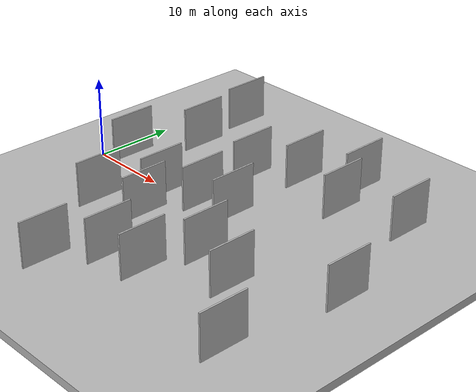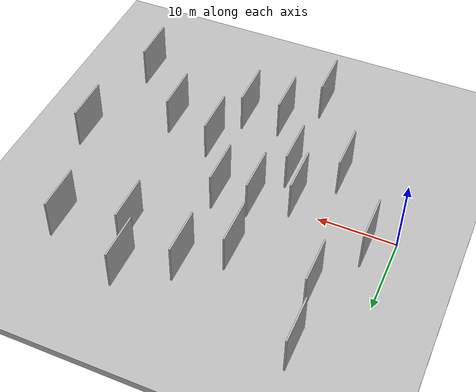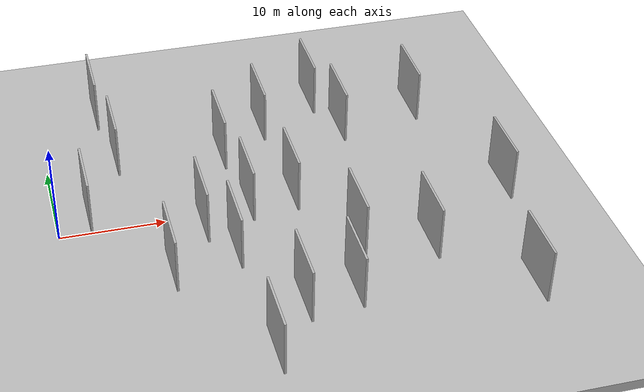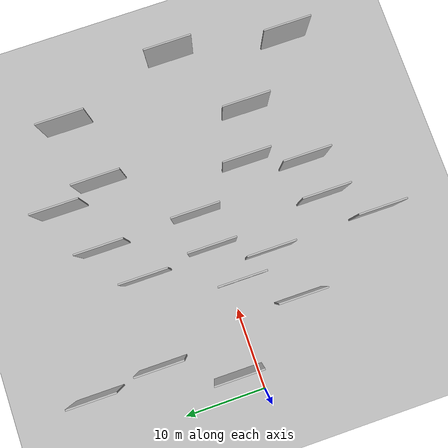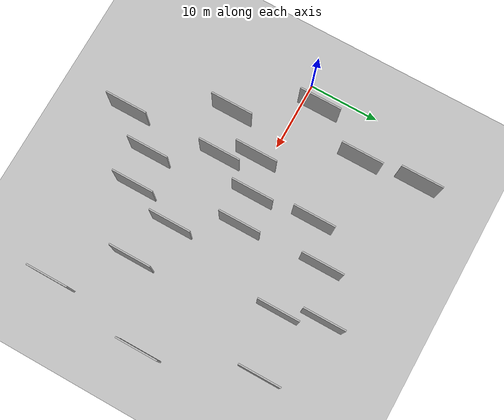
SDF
<?xml version="1.0" encoding="utf-8"?>

<sdf version="1.6">

   <world name="default">

      <gui fullscreen="0">

         <camera name="user_camera">

            <pose>-15 0 4.57585 0 0 0</pose>

            <view_controller>orbit</view_controller>

         </camera>

      </gui>

      <scene>

         <sky>

           <clouds>

             <speed>12</speed>

           </clouds>

         </sky>

         <ambient>0.4 0.4 0.4 1</ambient>

         <background>0.7 0.7 0.7 1</background>

         <shadows>1</shadows>

      </scene>

      <gravity>0 0 -9.8066</gravity>

      <magnetic_field>6e-06 2.3e-05 -4.2e-05</magnetic_field>

      <physics default="0" name="default_physics" type="ode">

         <ode>

            <solver>

               <type>quick</type>

               <iters>10</iters>

               <sor>1.0</sor>

               <use_dynamic_moi_rescaling>0</use_dynamic_moi_rescaling>

            </solver>

            <constraints>

               <cfm>0</cfm>

               <erp>0.2</erp>

               <contact_max_correcting_vel>100</contact_max_correcting_vel>

               <contact_surface_layer>0.001</contact_surface_layer>

            </constraints>

         </ode>

         <max_step_size>0.004</max_step_size>

         <real_time_factor>1</real_time_factor>

         <real_time_update_rate>250</real_time_update_rate>

      </physics>

      <light name="sun" type="directional">

         <cast_shadows>1</cast_shadows>

         <pose>0 0 10 0 0 0</pose>

         <diffuse>0.8 0.8 0.8 1</diffuse>

         <specular>0.2 0.2 0.2 1</specular>

         <attenuation>

            <range>1000</range>

            <constant>0.9</constant>

            <linear>0.01</linear>

            <quadratic>0.001</quadratic>

         </attenuation>

         <direction>-0.5 0.1 -0.9</direction>

      </light>

      <include>

         <name>ground_plane_1</name>

         <uri>model://HANNAS_ground_plane</uri>

         <pose>0 0 0  0 0 0</pose>

      </include>

      <include>

         <name>ground_plane_2</name>

         <uri>model://HANNAS_ground_plane</uri>

         <pose>100 0 0  0 0 0</pose>

      </include>

      <model name="HANNAS_wall_1">

         <static>1</static>

         <pose frame="">22.0301 12.8637 0.0 0.000000 0.000000 1.570796</pose>

         <link name="link">

            <pose frame="">0 0 3.00 0 0 0</pose>

            <collision name="collision">

               <geometry>

                  <box>

                     <size>6.00 0.2 6.00</size>

                  </box>

               </geometry>

               <max_contacts>10</max_contacts>

               <surface>

                  <contact>

                     <ode/>

                  </contact>

                  <bounce/>

                  <friction>

                     <torsional>

                        <ode/>

                     </torsional>

                     <ode/>

                  </friction>

               </surface>

            </collision>

            <visual name="visual">

               <cast_shadows>0</cast_shadows>

               <geometry>

                  <box>

                     <size>6.00 0.2 6.00</size>

                  </box>

               </geometry>

               <material>

                  <script>

                     <uri>model://HANNAS_wall/materials/scripts</uri>

                     <uri>model://HANNAS_wall/materials/textures</uri>

                     <name>vrc/HANNAS_wall</name>

                  </script>

               </material>

            </visual>

            <self_collide>0</self_collide>

            <enable_wind>0</enable_wind>

            <kinematic>0</kinematic>

         </link>

      </model>

      <model name="HANNAS_wall_2">

         <static>1</static>

         <pose frame="">38.0892 12.6469 0.0 0.000000 0.000000 1.570796</pose>

         <link name="link">

            <pose frame="">0 0 3.00 0 0 0</pose>

            <collision name="collision">

               <geometry>

                  <box>

                     <size>6.00 0.2 6.00</size>

                  </box>

               </geometry>

               <max_contacts>10</max_contacts>

               <surface>

                  <contact>

                     <ode/>

                  </contact>

                  <bounce/>

                  <friction>

                     <torsional>

                        <ode/>

                     </torsional>

                     <ode/>

                  </friction>

               </surface>

            </collision>

            <visual name="visual">

               <cast_shadows>0</cast_shadows>

               <geometry>

                  <box>

                     <size>6.00 0.2 6.00</size>

                  </box>

               </geometry>

               <material>

                  <script>

                     <uri>model://HANNAS_wall/materials/scripts</uri>

                     <uri>model://HANNAS_wall/materials/textures</uri>

                     <name>vrc/HANNAS_wall</name>

                  </script>

               </material>

            </visual>

            <self_collide>0</self_collide>

            <enable_wind>0</enable_wind>

            <kinematic>0</kinematic>

         </link>

      </model>

      <model name="HANNAS_wall_3">

         <static>1</static>

         <pose frame="">24.5456 -13.4512 0.0 0.000000 0.000000 1.570796</pose>

         <link name="link">

            <pose frame="">0 0 3.00 0 0 0</pose>

            <collision name="collision">

               <geometry>

                  <box>

                     <size>6.00 0.2 6.00</size>

                  </box>

               </geometry>

               <max_contacts>10</max_contacts>

               <surface>

                  <contact>

                     <ode/>

                  </contact>

                  <bounce/>

                  <friction>

                     <torsional>

                        <ode/>

                     </torsional>

                     <ode/>

                  </friction>

               </surface>

            </collision>

            <visual name="visual">

               <cast_shadows>0</cast_shadows>

               <geometry>

                  <box>

                     <size>6.00 0.2 6.00</size>

                  </box>

               </geometry>

               <material>

                  <script>

                     <uri>model://HANNAS_wall/materials/scripts</uri>

                     <uri>model://HANNAS_wall/materials/textures</uri>

                     <name>vrc/HANNAS_wall</name>

                  </script>

               </material>

            </visual>

            <self_collide>0</self_collide>

            <enable_wind>0</enable_wind>

            <kinematic>0</kinematic>

         </link>

      </model>

      <model name="HANNAS_wall_4">

         <static>1</static>

         <pose frame="">28.1130 16.3648 0.0 0.000000 0.000000 1.570796</pose>

         <link name="link">

            <pose frame="">0 0 3.00 0 0 0</pose>

            <collision name="collision">

               <geometry>

                  <box>

                     <size>6.00 0.2 6.00</size>

                  </box>

               </geometry>

               <max_contacts>10</max_contacts>

               <surface>

                  <contact>

                     <ode/>

                  </contact>

                  <bounce/>

                  <friction>

                     <torsional>

                        <ode/>

                     </torsional>

                     <ode/>

                  </friction>

               </surface>

            </collision>

            <visual name="visual">

               <cast_shadows>0</cast_shadows>

               <geometry>

                  <box>

                     <size>6.00 0.2 6.00</size>

                  </box>

               </geometry>

               <material>

                  <script>

                     <uri>model://HANNAS_wall/materials/scripts</uri>

                     <uri>model://HANNAS_wall/materials/textures</uri>

                     <name>vrc/HANNAS_wall</name>

                  </script>

               </material>

            </visual>

            <self_collide>0</self_collide>

            <enable_wind>0</enable_wind>

            <kinematic>0</kinematic>

         </link>

      </model>

      <model name="HANNAS_wall_5">

         <static>1</static>

         <pose frame="">15.4541 -5.8324 0.0 0.000000 0.000000 1.570796</pose>

         <link name="link">

            <pose frame="">0 0 3.00 0 0 0</pose>

            <collision name="collision">

               <geometry>

                  <box>

                     <size>6.00 0.2 6.00</size>

                  </box>

               </geometry>

               <max_contacts>10</max_contacts>

               <surface>

                  <contact>

                     <ode/>

                  </contact>

                  <bounce/>

                  <friction>

                     <torsional>

                        <ode/>

                     </torsional>

                     <ode/>

                  </friction>

               </surface>

            </collision>

            <visual name="visual">

               <cast_shadows>0</cast_shadows>

               <geometry>

                  <box>

                     <size>6.00 0.2 6.00</size>

                  </box>

               </geometry>

               <material>

                  <script>

                     <uri>model://HANNAS_wall/materials/scripts</uri>

                     <uri>model://HANNAS_wall/materials/textures</uri>

                     <name>vrc/HANNAS_wall</name>

                  </script>

               </material>

            </visual>

            <self_collide>0</self_collide>

            <enable_wind>0</enable_wind>

            <kinematic>0</kinematic>

         </link>

      </model>

      <model name="HANNAS_wall_6">

         <static>1</static>

         <pose frame="">17.1811 9.0823 0.0 0.000000 0.000000 1.570796</pose>

         <link name="link">

            <pose frame="">0 0 3.00 0 0 0</pose>

            <collision name="collision">

               <geometry>

                  <box>

                     <size>6.00 0.2 6.00</size>

                  </box>

               </geometry>

               <max_contacts>10</max_contacts>

               <surface>

                  <contact>

                     <ode/>

                  </contact>

                  <bounce/>

                  <friction>

                     <torsional>

                        <ode/>

                     </torsional>

                     <ode/>

                  </friction>

               </surface>

            </collision>

            <visual name="visual">

               <cast_shadows>0</cast_shadows>

               <geometry>

                  <box>

                     <size>6.00 0.2 6.00</size>

                  </box>

               </geometry>

               <material>

                  <script>

                     <uri>model://HANNAS_wall/materials/scripts</uri>

                     <uri>model://HANNAS_wall/materials/textures</uri>

                     <name>vrc/HANNAS_wall</name>

                  </script>

               </material>

            </visual>

            <self_collide>0</self_collide>

            <enable_wind>0</enable_wind>

            <kinematic>0</kinematic>

         </link>

      </model>

      <model name="HANNAS_wall_7">

         <static>1</static>

         <pose frame="">33.0293 -8.8493 0.0 0.000000 0.000000 1.570796</pose>

         <link name="link">

            <pose frame="">0 0 3.00 0 0 0</pose>

            <collision name="collision">

               <geometry>

                  <box>

                     <size>6.00 0.2 6.00</size>

                  </box>

               </geometry>

               <max_contacts>10</max_contacts>

               <surface>

                  <contact>

                     <ode/>

                  </contact>

                  <bounce/>

                  <friction>

                     <torsional>

                        <ode/>

                     </torsional>

                     <ode/>

                  </friction>

               </surface>

            </collision>

            <visual name="visual">

               <cast_shadows>0</cast_shadows>

               <geometry>

                  <box>

                     <size>6.00 0.2 6.00</size>

                  </box>

               </geometry>

               <material>

                  <script>

                     <uri>model://HANNAS_wall/materials/scripts</uri>

                     <uri>model://HANNAS_wall/materials/textures</uri>

                     <name>vrc/HANNAS_wall</name>

                  </script>

               </material>

            </visual>

            <self_collide>0</self_collide>

            <enable_wind>0</enable_wind>

            <kinematic>0</kinematic>

         </link>

      </model>

      <model name="HANNAS_wall_8">

         <static>1</static>

         <pose frame="">40.2877 -16.5880 0.0 0.000000 0.000000 1.570796</pose>

         <link name="link">

            <pose frame="">0 0 3.00 0 0 0</pose>

            <collision name="collision">

               <geometry>

                  <box>

                     <size>6.00 0.2 6.00</size>

                  </box>

               </geometry>

               <max_contacts>10</max_contacts>

               <surface>

                  <contact>

                     <ode/>

                  </contact>

                  <bounce/>

                  <friction>

                     <torsional>

                        <ode/>

                     </torsional>

                     <ode/>

                  </friction>

               </surface>

            </collision>

            <visual name="visual">

               <cast_shadows>0</cast_shadows>

               <geometry>

                  <box>

                     <size>6.00 0.2 6.00</size>

                  </box>

               </geometry>

               <material>

                  <script>

                     <uri>model://HANNAS_wall/materials/scripts</uri>

                     <uri>model://HANNAS_wall/materials/textures</uri>

                     <name>vrc/HANNAS_wall</name>

                  </script>

               </material>

            </visual>

            <self_collide>0</self_collide>

            <enable_wind>0</enable_wind>

            <kinematic>0</kinematic>

         </link>

      </model>

      <model name="HANNAS_wall_9">

         <static>1</static>

         <pose frame="">5.9375 18.7301 0.0 0.000000 0.000000 1.570796</pose>

         <link name="link">

            <pose frame="">0 0 3.00 0 0 0</pose>

            <collision name="collision">

               <geometry>

                  <box>

                     <size>6.00 0.2 6.00</size>

                  </box>

               </geometry>

               <max_contacts>10</max_contacts>

               <surface>

                  <contact>

                     <ode/>

                  </contact>

                  <bounce/>

                  <friction>

                     <torsional>

                        <ode/>

                     </torsional>

                     <ode/>

                  </friction>

               </surface>

            </collision>

            <visual name="visual">

               <cast_shadows>0</cast_shadows>

               <geometry>

                  <box>

                     <size>6.00 0.2 6.00</size>

                  </box>

               </geometry>

               <material>

                  <script>

                     <uri>model://HANNAS_wall/materials/scripts</uri>

                     <uri>model://HANNAS_wall/materials/textures</uri>

                     <name>vrc/HANNAS_wall</name>

                  </script>

               </material>

            </visual>

            <self_collide>0</self_collide>

            <enable_wind>0</enable_wind>

            <kinematic>0</kinematic>

         </link>

      </model>

      <model name="HANNAS_wall_10">

         <static>1</static>

         <pose frame="">29.8782 10.8072 0.0 0.000000 0.000000 1.570796</pose>

         <link name="link">

            <pose frame="">0 0 3.00 0 0 0</pose>

            <collision name="collision">

               <geometry>

                  <box>

                     <size>6.00 0.2 6.00</size>

                  </box>

               </geometry>

               <max_contacts>10</max_contacts>

               <surface>

                  <contact>

                     <ode/>

                  </contact>

                  <bounce/>

                  <friction>

                     <torsional>

                        <ode/>

                     </torsional>

                     <ode/>

                  </friction>

               </surface>

            </collision>

            <visual name="visual">

               <cast_shadows>0</cast_shadows>

               <geometry>

                  <box>

                     <size>6.00 0.2 6.00</size>

                  </box>

               </geometry>

               <material>

                  <script>

                     <uri>model://HANNAS_wall/materials/scripts</uri>

                     <uri>model://HANNAS_wall/materials/textures</uri>

                     <name>vrc/HANNAS_wall</name>

                  </script>

               </material>

            </visual>

            <self_collide>0</self_collide>

            <enable_wind>0</enable_wind>

            <kinematic>0</kinematic>

         </link>

      </model>

      <model name="HANNAS_wall_11">

         <static>1</static>

         <pose frame="">9.2517 -7.4460 0.0 0.000000 0.000000 1.570796</pose>

         <link name="link">

            <pose frame="">0 0 3.00 0 0 0</pose>

            <collision name="collision">

               <geometry>

                  <box>

                     <size>6.00 0.2 6.00</size>

                  </box>

               </geometry>

               <max_contacts>10</max_contacts>

               <surface>

                  <contact>

                     <ode/>

                  </contact>

                  <bounce/>

                  <friction>

                     <torsional>

                        <ode/>

                     </torsional>

                     <ode/>

                  </friction>

               </surface>

            </collision>

            <visual name="visual">

               <cast_shadows>0</cast_shadows>

               <geometry>

                  <box>

                     <size>6.00 0.2 6.00</size>

                  </box>

               </geometry>

               <material>

                  <script>

                     <uri>model://HANNAS_wall/materials/scripts</uri>

                     <uri>model://HANNAS_wall/materials/textures</uri>

                     <name>vrc/HANNAS_wall</name>

                  </script>

               </material>

            </visual>

            <self_collide>0</self_collide>

            <enable_wind>0</enable_wind>

            <kinematic>0</kinematic>

         </link>

      </model>

      <model name="HANNAS_wall_12">

         <static>1</static>

         <pose frame="">3.0282 2.3783 0.0 0.000000 0.000000 1.570796</pose>

         <link name="link">

            <pose frame="">0 0 3.00 0 0 0</pose>

            <collision name="collision">

               <geometry>

                  <box>

                     <size>6.00 0.2 6.00</size>

                  </box>

               </geometry>

               <max_contacts>10</max_contacts>

               <surface>

                  <contact>

                     <ode/>

                  </contact>

                  <bounce/>

                  <friction>

                     <torsional>

                        <ode/>

                     </torsional>

                     <ode/>

                  </friction>

               </surface>

            </collision>

            <visual name="visual">

               <cast_shadows>0</cast_shadows>

               <geometry>

                  <box>

                     <size>6.00 0.2 6.00</size>

                  </box>

               </geometry>

               <material>

                  <script>

                     <uri>model://HANNAS_wall/materials/scripts</uri>

                     <uri>model://HANNAS_wall/materials/textures</uri>

                     <name>vrc/HANNAS_wall</name>

                  </script>

               </material>

            </visual>

            <self_collide>0</self_collide>

            <enable_wind>0</enable_wind>

            <kinematic>0</kinematic>

         </link>

      </model>

      <model name="HANNAS_wall_13">

         <static>1</static>

         <pose frame="">42.6513 -2.1871 0.0 0.000000 0.000000 1.570796</pose>

         <link name="link">

            <pose frame="">0 0 3.00 0 0 0</pose>

            <collision name="collision">

               <geometry>

                  <box>

                     <size>6.00 0.2 6.00</size>

                  </box>

               </geometry>

               <max_contacts>10</max_contacts>

               <surface>

                  <contact>

                     <ode/>

                  </contact>

                  <bounce/>

                  <friction>

                     <torsional>

                        <ode/>

                     </torsional>

                     <ode/>

                  </friction>

               </surface>

            </collision>

            <visual name="visual">

               <cast_shadows>0</cast_shadows>

               <geometry>

                  <box>

                     <size>6.00 0.2 6.00</size>

                  </box>

               </geometry>

               <material>

                  <script>

                     <uri>model://HANNAS_wall/materials/scripts</uri>

                     <uri>model://HANNAS_wall/materials/textures</uri>

                     <name>vrc/HANNAS_wall</name>

                  </script>

               </material>

            </visual>

            <self_collide>0</self_collide>

            <enable_wind>0</enable_wind>

            <kinematic>0</kinematic>

         </link>

      </model>

      <model name="HANNAS_wall_14">

         <static>1</static>

         <pose frame="">18.0184 0.5225 0.0 0.000000 0.000000 1.570796</pose>

         <link name="link">

            <pose frame="">0 0 3.00 0 0 0</pose>

            <collision name="collision">

               <geometry>

                  <box>

                     <size>6.00 0.2 6.00</size>

                  </box>

               </geometry>

               <max_contacts>10</max_contacts>

               <surface>

                  <contact>

                     <ode/>

                  </contact>

                  <bounce/>

                  <friction>

                     <torsional>

                        <ode/>

                     </torsional>

                     <ode/>

                  </friction>

               </surface>

            </collision>

            <visual name="visual">

               <cast_shadows>0</cast_shadows>

               <geometry>

                  <box>

                     <size>6.00 0.2 6.00</size>

                  </box>

               </geometry>

               <material>

                  <script>

                     <uri>model://HANNAS_wall/materials/scripts</uri>

                     <uri>model://HANNAS_wall/materials/textures</uri>

                     <name>vrc/HANNAS_wall</name>

                  </script>

               </material>

            </visual>

            <self_collide>0</self_collide>

            <enable_wind>0</enable_wind>

            <kinematic>0</kinematic>

         </link>

      </model>

      <model name="HANNAS_wall_15">

         <static>1</static>

         <pose frame="">6.8391 10.5513 0.0 0.000000 0.000000 1.570796</pose>

         <link name="link">

            <pose frame="">0 0 3.00 0 0 0</pose>

            <collision name="collision">

               <geometry>

                  <box>

                     <size>6.00 0.2 6.00</size>

                  </box>

               </geometry>

               <max_contacts>10</max_contacts>

               <surface>

                  <contact>

                     <ode/>

                  </contact>

                  <bounce/>

                  <friction>

                     <torsional>

                        <ode/>

                     </torsional>

                     <ode/>

                  </friction>

               </surface>

            </collision>

            <visual name="visual">

               <cast_shadows>0</cast_shadows>

               <geometry>

                  <box>

                     <size>6.00 0.2 6.00</size>

                  </box>

               </geometry>

               <material>

                  <script>

                     <uri>model://HANNAS_wall/materials/scripts</uri>

                     <uri>model://HANNAS_wall/materials/textures</uri>

                     <name>vrc/HANNAS_wall</name>

                  </script>

               </material>

            </visual>

            <self_collide>0</self_collide>

            <enable_wind>0</enable_wind>

            <kinematic>0</kinematic>

         </link>

      </model>

      <model name="HANNAS_wall_16">

         <static>1</static>

         <pose frame="">19.7009 -14.0863 0.0 0.000000 0.000000 1.570796</pose>

         <link name="link">

            <pose frame="">0 0 3.00 0 0 0</pose>

            <collision name="collision">

               <geometry>

                  <box>

                     <size>6.00 0.2 6.00</size>

                  </box>

               </geometry>

               <max_contacts>10</max_contacts>

               <surface>

                  <contact>

                     <ode/>

                  </contact>

                  <bounce/>

                  <friction>

                     <torsional>

                        <ode/>

                     </torsional>

                     <ode/>

                  </friction>

               </surface>

            </collision>

            <visual name="visual">

               <cast_shadows>0</cast_shadows>

               <geometry>

                  <box>

                     <size>6.00 0.2 6.00</size>

                  </box>

               </geometry>

               <material>

                  <script>

                     <uri>model://HANNAS_wall/materials/scripts</uri>

                     <uri>model://HANNAS_wall/materials/textures</uri>

                     <name>vrc/HANNAS_wall</name>

                  </script>

               </material>

            </visual>

            <self_collide>0</self_collide>

            <enable_wind>0</enable_wind>

            <kinematic>0</kinematic>

         </link>

      </model>

      <model name="HANNAS_wall_17">

         <static>1</static>

         <pose frame="">15.8676 -19.5387 0.0 0.000000 0.000000 1.570796</pose>

         <link name="link">

            <pose frame="">0 0 3.00 0 0 0</pose>

            <collision name="collision">

               <geometry>

                  <box>

                     <size>6.00 0.2 6.00</size>

                  </box>

               </geometry>

               <max_contacts>10</max_contacts>

               <surface>

                  <contact>

                     <ode/>

                  </contact>

                  <bounce/>

                  <friction>

                     <torsional>

                        <ode/>

                     </torsional>

                     <ode/>

                  </friction>

               </surface>

            </collision>

            <visual name="visual">

               <cast_shadows>0</cast_shadows>

               <geometry>

                  <box>

                     <size>6.00 0.2 6.00</size>

                  </box>

               </geometry>

               <material>

                  <script>

                     <uri>model://HANNAS_wall/materials/scripts</uri>

                     <uri>model://HANNAS_wall/materials/textures</uri>

                     <name>vrc/HANNAS_wall</name>

                  </script>

               </material>

            </visual>

            <self_collide>0</self_collide>

            <enable_wind>0</enable_wind>

            <kinematic>0</kinematic>

         </link>

      </model>

      <model name="HANNAS_wall_18">

         <static>1</static>

         <pose frame="">13.2717 -1.5242 0.0 0.000000 0.000000 1.570796</pose>

         <link name="link">

            <pose frame="">0 0 3.00 0 0 0</pose>

            <collision name="collision">

               <geometry>

                  <box>

                     <size>6.00 0.2 6.00</size>

                  </box>

               </geometry>

               <max_contacts>10</max_contacts>

               <surface>

                  <contact>

                     <ode/>

                  </contact>

                  <bounce/>

                  <friction>

                     <torsional>

                        <ode/>

                     </torsional>

                     <ode/>

                  </friction>

               </surface>

            </collision>

            <visual name="visual">

               <cast_shadows>0</cast_shadows>

               <geometry>

                  <box>

                     <size>6.00 0.2 6.00</size>

                  </box>

               </geometry>

               <material>

                  <script>

                     <uri>model://HANNAS_wall/materials/scripts</uri>

                     <uri>model://HANNAS_wall/materials/textures</uri>

                     <name>vrc/HANNAS_wall</name>

                  </script>

               </material>

            </visual>

            <self_collide>0</self_collide>

            <enable_wind>0</enable_wind>

            <kinematic>0</kinematic>

         </link>

      </model>

      <model name="HANNAS_wall_19">

         <static>1</static>

         <pose frame="">22.4625 1.0738 0.0 0.000000 0.000000 1.570796</pose>

         <link name="link">

            <pose frame="">0 0 3.00 0 0 0</pose>

            <collision name="collision">

               <geometry>

                  <box>

                     <size>6.00 0.2 6.00</size>

                  </box>

               </geometry>

               <max_contacts>10</max_contacts>

               <surface>

                  <contact>

                     <ode/>

                  </contact>

                  <bounce/>

                  <friction>

                     <torsional>

                        <ode/>

                     </torsional>

                     <ode/>

                  </friction>

               </surface>

            </collision>

            <visual name="visual">

               <cast_shadows>0</cast_shadows>

               <geometry>

                  <box>

                     <size>6.00 0.2 6.00</size>

                  </box>

               </geometry>

               <material>

                  <script>

                     <uri>model://HANNAS_wall/materials/scripts</uri>

                     <uri>model://HANNAS_wall/materials/textures</uri>

                     <name>vrc/HANNAS_wall</name>

                  </script>

               </material>

            </visual>

            <self_collide>0</self_collide>

            <enable_wind>0</enable_wind>

            <kinematic>0</kinematic>

         </link>

      </model>

      <model name="HANNAS_wall_20">

         <static>1</static>

         <pose frame="">26.7102 -6.7051 0.0 0.000000 0.000000 1.570796</pose>

         <link name="link">

            <pose frame="">0 0 3.00 0 0 0</pose>

            <collision name="collision">

               <geometry>

                  <box>

                     <size>6.00 0.2 6.00</size>

                  </box>

               </geometry>

               <max_contacts>10</max_contacts>

               <surface>

                  <contact>

                     <ode/>

                  </contact>

                  <bounce/>

                  <friction>

                     <torsional>

                        <ode/>

                     </torsional>

                     <ode/>

                  </friction>

               </surface>

            </collision>

            <visual name="visual">

               <cast_shadows>0</cast_shadows>

               <geometry>

                  <box>

                     <size>6.00 0.2 6.00</size>

                  </box>

               </geometry>

               <material>

                  <script>

                     <uri>model://HANNAS_wall/materials/scripts</uri>

                     <uri>model://HANNAS_wall/materials/textures</uri>

                     <name>vrc/HANNAS_wall</name>

                  </script>

               </material>

            </visual>

            <self_collide>0</self_collide>

            <enable_wind>0</enable_wind>

            <kinematic>0</kinematic>

         </link>

      </model>

   </world>

</sdf>

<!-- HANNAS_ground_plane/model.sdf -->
<sdf version="1.4">
<model name="HANNAS_ground_plane">
  <static>true</static>
    <link name="link">
      <collision name="collision">
        <geometry>
          <plane>
            <normal>0 0 1</normal>
            <size>1000 1000</size>
          </plane>
        </geometry>
        <surface>
          <friction>
            <ode>
              <mu>100</mu>
              <mu2>50</mu2>
            </ode>
          </friction>
        </surface>
      </collision>
      <visual name="visual">
        <cast_shadows>false</cast_shadows>
        <geometry>
          <plane>
            <normal>0 0 1</normal>
            <size>1000 1000</size>
          </plane>
        </geometry>
        <material>
          <script>
            <uri>model://HANNAS_ground_plane/materials/scripts/HANNAS_ground_plane.material</uri>
	    <uri>model://HANNAS_ground_plane/materials/textures</uri>
            <name>HANNASGroundPlane/Image</name>
          </script>
        </material>
      </visual>
    </link>
  </model>
</sdf>
